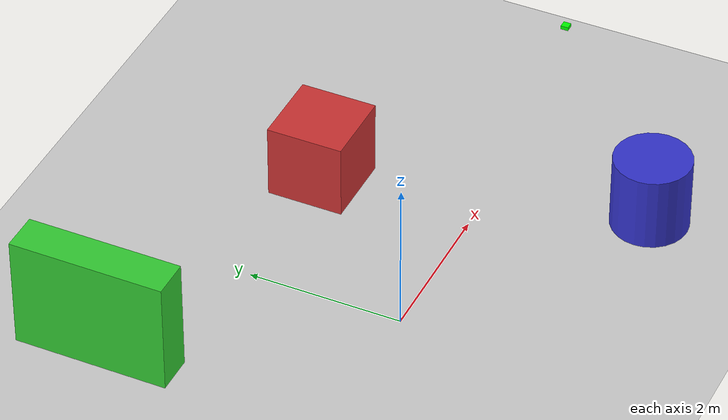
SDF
<?xml version="1.0" ?>
<sdf version="1.7">
  <world name="mmwave_test">
    <plugin
      filename="gz-sim-physics-system"
      name="gz::sim::systems::Physics">
    </plugin>
    <plugin
      filename="gz-sim-scene-broadcaster-system"
      name="gz::sim::systems::SceneBroadcaster">
    </plugin>
    <plugin
      filename="gz-sim-user-commands-system"
      name="gz::sim::systems::UserCommands">
    </plugin>
    <plugin
      filename="gz-sim-sensors-system"
      name="gz::sim::systems::Sensors">
    </plugin>

    <light type="directional" name="sun">
      <cast_shadows>true</cast_shadows>
      <pose>0 0 10 0 0 0</pose>
      <diffuse>0.8 0.8 0.8 1</diffuse>
      <specular>0.2 0.2 0.2 1</specular>
      <attenuation>
        <range>1000</range>
        <constant>0.9</constant>
        <linear>0.01</linear>
        <quadratic>0.001</quadratic>
      </attenuation>
      <direction>-0.5 0.1 -0.9</direction>
    </light>

    <model name="ground_plane">
      <static>true</static>
      <link name="link">
        <collision name="collision">
          <geometry>
            <plane>
              <normal>0 0 1</normal>
              <size>100 100</size>
            </plane>
          </geometry>
        </collision>
        <visual name="visual">
          <geometry>
            <plane>
              <normal>0 0 1</normal>
              <size>100 100</size>
            </plane>
          </geometry>
          <material>
            <ambient>0.8 0.8 0.8 1</ambient>
            <diffuse>0.8 0.8 0.8 1</diffuse>
            <specular>0.8 0.8 0.8 1</specular>
          </material>
        </visual>
      </link>
    </model>

    <!-- Simple box obstacles for mmWave testing - with visuals -->
    <model name="box_obstacle_1">
      <static>true</static>
      <pose>2 2 0.5 0 0 0</pose>
      <link name="link">
        <collision name="collision">
          <geometry>
            <box>
              <size>1 1 1</size>
            </box>
          </geometry>
        </collision>
        <visual name="visual">
          <geometry>
            <box>
              <size>1 1 1</size>
            </box>
          </geometry>
          <material>
            <ambient>0.8 0.2 0.2 1</ambient>
            <diffuse>0.8 0.2 0.2 1</diffuse>
            <specular>0.1 0.1 0.1 1</specular>
          </material>
        </visual>
      </link>
    </model>

    <model name="box_obstacle_2">
      <static>true</static>
      <pose>-2 3 0.75 0 0 0</pose>
      <link name="link">
        <collision name="collision">
          <geometry>
            <box>
              <size>0.5 2 1.5</size>
            </box>
          </geometry>
        </collision>
        <visual name="visual">
          <geometry>
            <box>
              <size>0.5 2 1.5</size>
            </box>
          </geometry>
          <material>
            <ambient>0.2 0.8 0.2 1</ambient>
            <diffuse>0.2 0.8 0.2 1</diffuse>
            <specular>0.1 0.1 0.1 1</specular>
          </material>
        </visual>
      </link>
    </model>

    <model name="cylinder_obstacle">
      <static>true</static>
      <pose>3 -2 0.5 0 0 0</pose>
      <link name="link">
        <collision name="collision">
          <geometry>
            <cylinder>
              <radius>0.5</radius>
              <length>1</length>
            </cylinder>
          </geometry>
        </collision>
        <visual name="visual">
          <geometry>
            <cylinder>
              <radius>0.5</radius>
              <length>1</length>
            </cylinder>
          </geometry>
          <material>
            <ambient>0.2 0.2 0.8 1</ambient>
            <diffuse>0.2 0.2 0.8 1</diffuse>
            <specular>0.1 0.1 0.1 1</specular>
          </material>
        </visual>
      </link>
    </model>

    <model name="mmwave_sensor">
      <static>true</static>
      <pose>0 0 1 0 0 0</pose>
      <plugin
        filename="gz-sim-pose-publisher-system"
        name="gz::sim::systems::PosePublisher">
        <static_publisher>true</static_publisher>
        <update_frequency>10</update_frequency>
      </plugin>
      <link name="link">
        <pose>0 0 0 0 0 0</pose>
        <sensor name="mmwave" type="ray">
          <always_on>1</always_on>
          <visualize>true</visualize>
          <update_rate>10</update_rate>
          <topic>/mmwave/points</topic>
          <ray>
            <scan>
              <horizontal>
                <samples>32</samples>
                <resolution>1</resolution>
                <min_angle>-0.7854</min_angle>
                <max_angle>0.7854</max_angle>
              </horizontal>
              <vertical>
                <samples>16</samples>
                <resolution>1</resolution>
                <min_angle>-0.2618</min_angle>
                <max_angle>0.2618</max_angle>
              </vertical>
            </scan>
            <range>
              <min>0.05</min>
              <max>50</max>
              <resolution>0.01</resolution>
            </range>
          </ray>
          <plugin
            filename="libMmWaveSensorPlugin.so"
            name="olympus_sim::MmWaveSensorPlugin">
            <horizontal_fov>1.5708</horizontal_fov>
            <vertical_fov>0.5236</vertical_fov>
            <horizontal_resolution>32</horizontal_resolution>
            <vertical_resolution>16</vertical_resolution>
            <min_range>0.05</min_range>
            <max_range>50</max_range>
            <noise_mean>0</noise_mean>
            <noise_stddev>0.01</noise_stddev>
            <default_rcs>1.0</default_rcs>
            <min_rcs>0.1</min_rcs>
            <max_radial_velocity>30.0</max_radial_velocity>
            <force_raycast>true</force_raycast>
            <visualize>true</visualize>
            <wsl_compat_mode>false</wsl_compat_mode>
            <use_point_clouds_only>false</use_point_clouds_only>
            <debug>true</debug>
          </plugin>
        </sensor>
      </link>
    </model>

    <!-- Second mmWave sensor -->
    <model name="mmwave_sensor2">
      <static>true</static>
      <pose>5 0 1 0 0 3.14159</pose>
      <plugin
        filename="gz-sim-pose-publisher-system"
        name="gz::sim::systems::PosePublisher">
        <static_publisher>true</static_publisher>
        <update_frequency>10</update_frequency>
      </plugin>
      <link name="link">
        <pose>0 0 0 0 0 0</pose>
        <sensor name="mmwave2" type="ray">
          <always_on>1</always_on>
          <visualize>true</visualize>
          <update_rate>10</update_rate>
          <topic>/mmwave2/points</topic>
          <ray>
            <scan>
              <horizontal>
                <samples>32</samples>
                <resolution>1</resolution>
                <min_angle>-0.7854</min_angle>
                <max_angle>0.7854</max_angle>
              </horizontal>
              <vertical>
                <samples>16</samples>
                <resolution>1</resolution>
                <min_angle>-0.2618</min_angle>
                <max_angle>0.2618</max_angle>
              </vertical>
            </scan>
            <range>
              <min>0.05</min>
              <max>50</max>
              <resolution>0.01</resolution>
            </range>
          </ray>
          <plugin
            filename="libMmWaveSensorPlugin.so"
            name="olympus_sim::MmWaveSensorPlugin">
            <horizontal_fov>1.5708</horizontal_fov>
            <vertical_fov>0.5236</vertical_fov>
            <horizontal_resolution>32</horizontal_resolution>
            <vertical_resolution>16</vertical_resolution>
            <min_range>0.05</min_range>
            <max_range>50</max_range>
            <noise_mean>0</noise_mean>
            <noise_stddev>0.01</noise_stddev>
            <default_rcs>1.0</default_rcs>
            <min_rcs>0.1</min_rcs>
            <max_radial_velocity>30.0</max_radial_velocity>
            <force_raycast>true</force_raycast>
            <visualize>true</visualize>
            <wsl_compat_mode>false</wsl_compat_mode>
            <use_point_clouds_only>false</use_point_clouds_only>
            <debug>true</debug>
          </plugin>
        </sensor>
        <visual name="visual">
          <geometry>
            <box>
              <size>0.1 0.1 0.05</size>
            </box>
          </geometry>
          <material>
            <ambient>0 1 0 1</ambient>
            <diffuse>0 1 0 1</diffuse>
          </material>
        </visual>
      </link>
    </model>

  </world>
</sdf>
